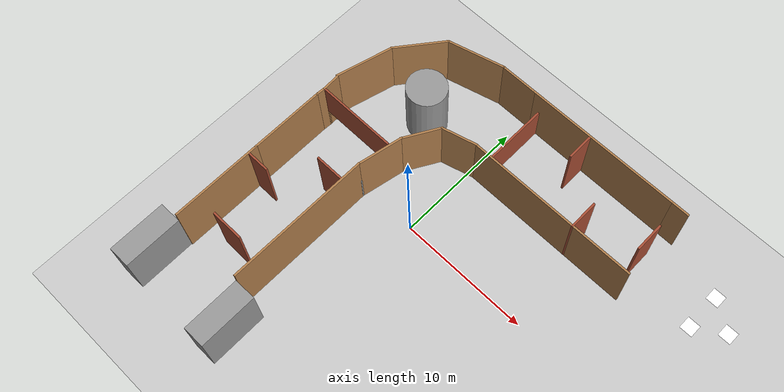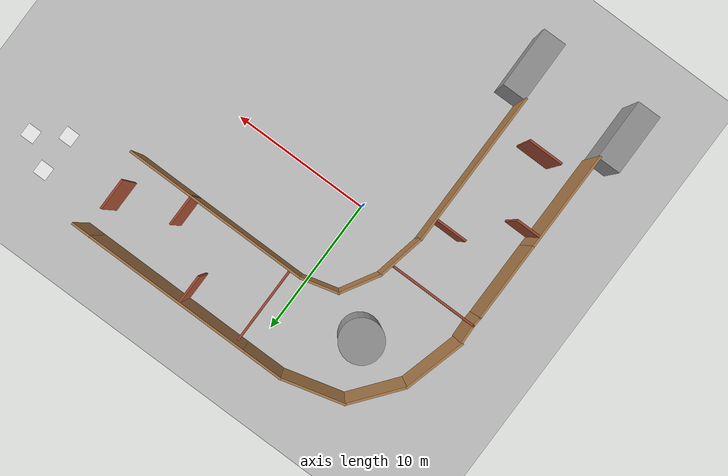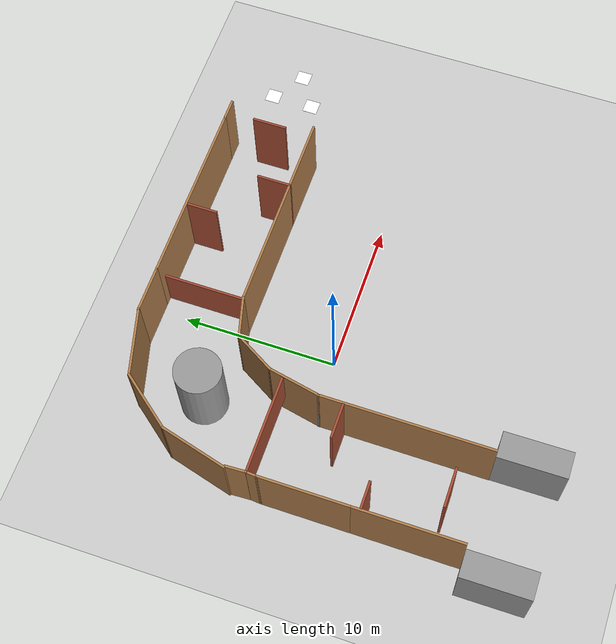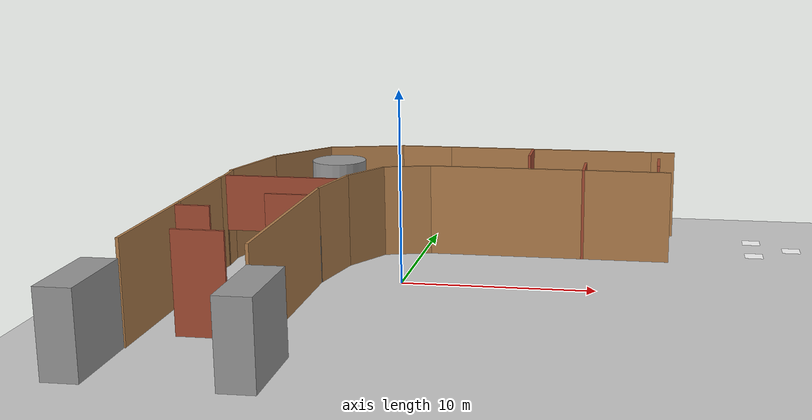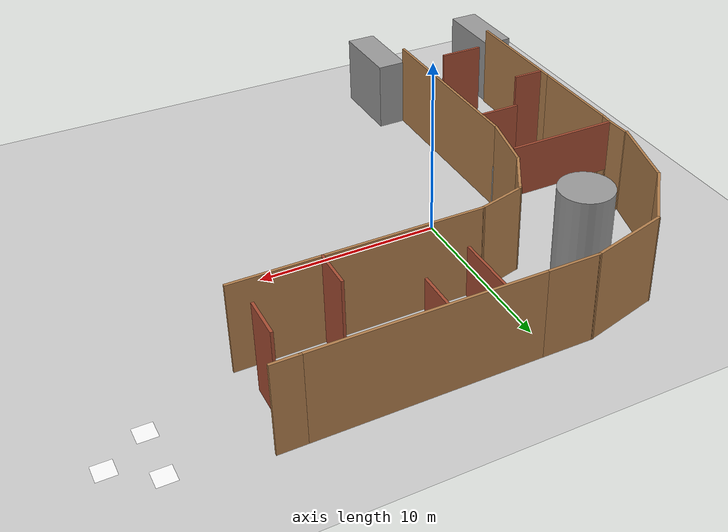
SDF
<sdf version="1.6">
 <world name="default">
  <light name="sun" type="directional">
   <pose>0 0 10 0 -0 0</pose>
   <diffuse>0.8 0.8 0.8 1</diffuse>
   <specular>0.2 0.2 0.2 1</specular>
   <attenuation>
    <range>1000</range>
    <constant>0.9</constant>
    <linear>0.01</linear>
    <quadratic>0.001</quadratic>
   </attenuation>
   <direction>-0.5 0.1 -0.9</direction>
  </light>
  <model name="ground_plane">
   <static>1</static>
   <link name="link">
    <collision name="collision">
     <geometry><plane><normal>0 0 1</normal><size>100 100</size></plane></geometry>
     <surface><friction><ode><mu>100</mu><mu2>50</mu2></ode></friction></surface>
    </collision>
    <visual name="visual">
     <cast_shadows>0</cast_shadows>
     <geometry><plane><normal>0 0 1</normal><size>100 100</size></plane></geometry>
     <material>
      <script><uri>file://media/materials/scripts/gazebo.material</uri><name>Gazebo/Grey</name></script>
     </material>
    </visual>
   </link>
  </model>
  <gravity>0 0 -9.8</gravity>
  <magnetic_field>6e-06 2.3e-05 -4.2e-05</magnetic_field>
  <atmosphere type="adiabatic"/>
  <physics name="default_physics" default="0" type="ode">
   <max_step_size>0.001</max_step_size>
   <real_time_factor>1</real_time_factor>
   <real_time_update_rate>1000</real_time_update_rate>
  </physics>
  <scene><ambient>0.4 0.4 0.4 1</ambient><background>0.7 0.7 0.7 1</background><shadows>1</shadows></scene>
  <spherical_coordinates>
   <surface_model>EARTH_WGS84</surface_model>
   <latitude_deg>0</latitude_deg>
   <longitude_deg>0</longitude_deg>
   <elevation>0</elevation>
   <heading_deg>0</heading_deg>
  </spherical_coordinates>
  <model name="interiit_world2">
   <pose>1.8047 0.18445 0 0 -0 0</pose>
   <link name="Wall_10">
    <collision name="Wall_10_Collision">
     <geometry><box><size>7 0.15 5</size></box></geometry>
     <pose>0 0 2.5 0 -0 0</pose>
    </collision>
    <visual name="Wall_10_Visual">
     <pose>0 0 2.5 0 -0 0</pose>
     <geometry><box><size>7 0.15 5</size></box></geometry>
     <material>
      <script><uri>file://media/materials/scripts/gazebo.material</uri><name>Gazebo/Wood</name></script>
      <ambient>1 1 1 1</ambient>
     </material>
     <meta><layer>0</layer></meta>
    </visual>
    <pose>-11.8375 -7.97498 0 0 -0 -1.5708</pose>
   </link>
   <link name="Wall_20">
    <collision name="Wall_20_Collision">
     <geometry><box><size>12 0.15 5</size></box></geometry>
     <pose>0 0 2.5 0 -0 0</pose>
    </collision>
    <visual name="Wall_20_Visual">
     <pose>0 0 2.5 0 -0 0</pose>
     <geometry><box><size>12 0.15 5</size></box></geometry>
     <material>
      <script><uri>file://media/materials/scripts/gazebo.material</uri><name>Gazebo/Wood</name></script>
      <ambient>1 1 1 1</ambient>
     </material>
     <meta><layer>0</layer></meta>
    </visual>
    <pose>4.65949 11.513 0 0 -0 3.14159</pose>
   </link>
   <link name="Wall_22">
    <collision name="Wall_22_Collision">
     <geometry><box><size>3 0.15 5</size></box></geometry>
     <pose>0 0 2.5 0 -0 0</pose>
    </collision>
    <visual name="Wall_22_Visual">
     <pose>0 0 2.5 0 -0 0</pose>
     <geometry><box><size>3 0.15 5</size></box></geometry>
     <material>
      <script><uri>file://media/materials/scripts/gazebo.material</uri><name>Gazebo/Wood</name></script>
      <ambient>1 1 1 1</ambient>
     </material>
     <meta><layer>0</layer></meta>
    </visual>
    <pose>-2.69051 11.513 0 0 -0 3.14159</pose>
   </link>
   <link name="Wall_24">
    <collision name="Wall_24_Collision">
     <geometry><box><size>1.39517 0.15 5</size></box></geometry>
     <pose>0 0 2.5 0 -0 0</pose>
    </collision>
    <visual name="Wall_24_Visual">
     <pose>0 0 2.5 0 -0 0</pose>
     <geometry><box><size>1.39517 0.15 5</size></box></geometry>
     <material>
      <script><uri>file://media/materials/scripts/gazebo.material</uri><name>Gazebo/Wood</name></script>
      <ambient>1 1 1 1</ambient>
     </material>
     <meta><layer>0</layer></meta>
    </visual>
    <pose>-11.8185 2.32902 0 0 -0 -1.52741</pose>
   </link>
   <link name="Wall_26">
    <collision name="Wall_26_Collision">
     <geometry><box><size>4.5 0.15 5</size></box></geometry>
     <pose>0 0 2.5 0 -0 0</pose>
    </collision>
    <visual name="Wall_26_Visual">
     <pose>0 0 2.5 0 -0 0</pose>
     <geometry><box><size>4.5 0.15 5</size></box></geometry>
     <material>
      <script><uri>file://media/materials/scripts/gazebo.material</uri><name>Gazebo/Wood</name></script>
      <ambient>1 1 1 1</ambient>
     </material>
     <meta><layer>0</layer></meta>
    </visual>
    <pose>-6.21601 10.95 0 0 -0 -2.87972</pose>
   </link>
   <link name="Wall_28">
    <collision name="Wall_28_Collision">
     <geometry><box><size>4.5 0.15 5</size></box></geometry>
     <pose>0 0 2.5 0 -0 0</pose>
    </collision>
    <visual name="Wall_28_Visual">
     <pose>0 0 2.5 0 -0 0</pose>
     <geometry><box><size>4.5 0.15 5</size></box></geometry>
     <material>
      <script><uri>file://media/materials/scripts/gazebo.material</uri><name>Gazebo/Wood</name></script>
      <ambient>1 1 1 1</ambient>
     </material>
     <meta><layer>0</layer></meta>
    </visual>
    <pose>-11.355 5.13552 0 0 -0 -1.83245</pose>
   </link>
   <link name="Wall_30">
    <collision name="Wall_30_Collision">
     <geometry><box><size>4.15659 0.15 5</size></box></geometry>
     <pose>0 0 2.5 0 -0 0</pose>
    </collision>
    <visual name="Wall_30_Visual">
     <pose>0 0 2.5 0 -0 0</pose>
     <geometry><box><size>4.15659 0.15 5</size></box></geometry>
     <material>
      <script><uri>file://media/materials/scripts/gazebo.material</uri><name>Gazebo/Wood</name></script>
      <ambient>1 1 1 1</ambient>
     </material>
     <meta><layer>0</layer></meta>
    </visual>
    <pose>-9.55451 8.81152 0 0 -0 -2.23681</pose>
   </link>
   <link name="Wall_38">
    <collision name="Wall_38_Collision">
     <geometry><box><size>11 0.15 5</size></box></geometry>
     <pose>0 0 2.5 0 -0 0</pose>
    </collision>
    <visual name="Wall_38_Visual">
     <pose>0 0 2.5 0 -0 0</pose>
     <geometry><box><size>11 0.15 5</size></box></geometry>
     <material>
      <script><uri>file://media/materials/scripts/gazebo.material</uri><name>Gazebo/Wood</name></script>
      <ambient>1 1 1 1</ambient>
     </material>
     <meta><layer>0</layer></meta>
    </visual>
    <pose>-5.99251 -6.10498 0 0 -0 1.5708</pose>
   </link>
   <link name="Wall_40">
    <collision name="Wall_40_Collision">
     <geometry><box><size>2.75 0.15 5</size></box></geometry>
     <pose>0 0 2.5 0 -0 0</pose>
    </collision>
    <visual name="Wall_40_Visual">
     <pose>0 0 2.5 0 -0 0</pose>
     <geometry><box><size>2.75 0.15 5</size></box></geometry>
     <material>
      <script><uri>file://media/materials/scripts/gazebo.material</uri><name>Gazebo/Wood</name></script>
      <ambient>1 1 1 1</ambient>
     </material>
     <meta><layer>0</layer></meta>
    </visual>
    <pose>-2.63401 5.42352 0 0 -0 -2.87973</pose>
   </link>
   <link name="Wall_41">
    <collision name="Wall_41_Collision">
     <geometry><box><size>3 0.15 5</size></box></geometry>
     <pose>0 0 2.5 0 -0 0</pose>
    </collision>
    <visual name="Wall_41_Visual">
     <pose>0 0 2.5 0 -0 0</pose>
     <geometry><box><size>3 0.15 5</size></box></geometry>
     <material>
      <script><uri>file://media/materials/scripts/gazebo.material</uri><name>Gazebo/Wood</name></script>
      <ambient>1 1 1 1</ambient>
     </material>
     <meta><layer>0</layer></meta>
    </visual>
    <pose>-4.60201 3.85302 0 0 -0 -2.09443</pose>
   </link>
   <link name="Wall_42">
    <collision name="Wall_42_Collision">
     <geometry><box><size>3.51723 0.15 5</size></box></geometry>
     <pose>0 0 2.5 0 -0 0</pose>
    </collision>
    <visual name="Wall_42_Visual">
     <pose>0 0 2.5 0 -0 0</pose>
     <geometry><box><size>3.51723 0.15 5</size></box></geometry>
     <material>
      <script><uri>file://media/materials/scripts/gazebo.material</uri><name>Gazebo/Wood</name></script>
      <ambient>1 1 1 1</ambient>
     </material>
     <meta><layer>0</layer></meta>
    </visual>
    <pose>-5.65351 0.969523 0 0 -0 -1.77349</pose>
   </link>
   <link name="Wall_43">
    <collision name="Wall_43_Collision">
     <geometry><box><size>0.16 0.15 2.5</size></box></geometry>
     <pose>0 0 1.25 0 -0 0</pose>
    </collision>
    <visual name="Wall_43_Visual">
     <pose>0 0 1.25 0 -0 0</pose>
     <geometry><box><size>0.16 0.15 2.5</size></box></geometry>
     <material>
      <script><uri>file://media/materials/scripts/gazebo.material</uri><name>Gazebo/Grey</name></script>
      <ambient>1 1 1 1</ambient>
     </material>
     <meta><layer>0</layer></meta>
    </visual>
    <pose>-5.98772 -0.679823 0 0 -0 0.032065</pose>
   </link>
   <link name="Wall_48">
    <collision name="Wall_48_Collision">
     <geometry><box><size>13.25 0.15 5</size></box></geometry>
     <pose>0 0 2.5 0 -0 0</pose>
    </collision>
    <visual name="Wall_48_Visual">
     <pose>0 0 2.5 0 -0 0</pose>
     <geometry><box><size>13.25 0.15 5</size></box></geometry>
     <material>
      <script><uri>file://media/materials/scripts/gazebo.material</uri><name>Gazebo/Wood</name></script>
      <ambient>1 1 1 1</ambient>
     </material>
     <meta><layer>0</layer></meta>
    </visual>
    <pose>5.17149 5.76002 0 0 -0 0</pose>
   </link>
   <link name="Wall_50">
    <collision name="Wall_50_Collision">
     <geometry><box><size>1.5 0.15 5</size></box></geometry>
     <pose>0 0 2.5 0 -0 0</pose>
    </collision>
    <visual name="Wall_50_Visual">
     <pose>0 0 2.5 0 -0 0</pose>
     <geometry><box><size>1.5 0.15 5</size></box></geometry>
     <material>
      <script><uri>file://media/materials/scripts/gazebo.material</uri><name>Gazebo/Wood</name></script>
      <ambient>1 1 1 1</ambient>
     </material>
     <meta><layer>0</layer></meta>
    </visual>
    <pose>11.2595 11.513 0 0 -0 0</pose>
   </link>
   <link name="Wall_52">
    <collision name="Wall_52_Collision">
     <geometry><box><size>2.5 0.15 5</size></box></geometry>
     <pose>0 0 2.5 0 -0 0</pose>
    </collision>
    <visual name="Wall_52_Visual">
     <pose>0 0 2.5 0 -0 0</pose>
     <geometry><box><size>2.5 0.15 5</size></box></geometry>
     <material>
      <script><uri>file://media/materials/scripts/gazebo.material</uri><name>Gazebo/Bricks</name></script>
      <ambient>1 1 1 1</ambient>
     </material>
     <meta><layer>0</layer></meta>
    </visual>
    <pose>-8.94051 -9.64151 0 0 -0 0</pose>
   </link>
   <link name="Wall_56">
    <collision name="Wall_56_Collision">
     <geometry><box><size>1.75 0.15 5</size></box></geometry>
     <pose>0 0 2.5 0 -0 0</pose>
    </collision>
    <visual name="Wall_56_Visual">
     <pose>0 0 2.5 0 -0 0</pose>
     <geometry><box><size>1.75 0.15 5</size></box></geometry>
     <material>
      <script><uri>file://media/materials/scripts/gazebo.material</uri><name>Gazebo/Bricks</name></script>
      <ambient>1 1 1 1</ambient>
     </material>
     <meta><layer>0</layer></meta>
    </visual>
    <pose>-10.9145 -5.19198 0 0 -0 0</pose>
   </link>
   <link name="Wall_58">
    <collision name="Wall_58_Collision">
     <geometry><box><size>2.25 0.15 5</size></box></geometry>
     <pose>0 0 2.5 0 -0 0</pose>
    </collision>
    <visual name="Wall_58_Visual">
     <pose>0 0 2.5 0 -0 0</pose>
     <geometry><box><size>2.25 0.15 5</size></box></geometry>
     <material>
      <script><uri>file://media/materials/scripts/gazebo.material</uri><name>Gazebo/Bricks</name></script>
      <ambient>1 1 1 1</ambient>
     </material>
     <meta><layer>0</layer></meta>
    </visual>
    <pose>-7.15751 -2.23898 0 0 -0 0</pose>
   </link>
   <link name="Wall_60">
    <collision name="Wall_60_Collision">
     <geometry><box><size>6.25 0.15 3</size></box></geometry>
     <pose>0 0 1.5 0 -0 0</pose>
    </collision>
    <visual name="Wall_60_Visual">
     <pose>0 0 1.5 0 -0 0</pose>
     <geometry><box><size>6.25 0.15 3</size></box></geometry>
     <material>
      <script><uri>file://media/materials/scripts/gazebo.material</uri><name>Gazebo/Bricks</name></script>
      <ambient>1 1 1 1</ambient>
     </material>
     <meta><layer>0</layer></meta>
    </visual>
    <pose>-8.74176 1.7068 2 0 -0 -7.5e-05</pose>
   </link>
   <link name="Wall_62">
    <collision name="Wall_62_Collision">
     <geometry><box><size>5.75 0.15 3</size></box></geometry>
     <pose>0 0 1.5 0 -0 0</pose>
    </collision>
    <visual name="Wall_62_Visual">
     <pose>0 0 1.5 0 -0 0</pose>
     <geometry><box><size>5.75 0.15 3</size></box></geometry>
     <material>
      <script><uri>file://media/materials/scripts/gazebo.material</uri><name>Gazebo/Bricks</name></script>
      <ambient>1 1 1 1</ambient>
     </material>
     <meta><layer>0</layer></meta>
    </visual>
    <pose>-0.578513 8.62002 0 0 -0 -1.5708</pose>
   </link>
   <link name="Wall_64">
    <collision name="Wall_64_Collision">
     <geometry><box><size>2 0.15 5</size></box></geometry>
     <pose>0 0 2.5 0 -0 0</pose>
    </collision>
    <visual name="Wall_64_Visual">
     <pose>0 0 2.5 0 -0 0</pose>
     <geometry><box><size>2 0.15 5</size></box></geometry>
     <material>
      <script><uri>file://media/materials/scripts/gazebo.material</uri><name>Gazebo/Bricks</name></script>
      <ambient>1 1 1 1</ambient>
     </material>
     <meta><layer>0</layer></meta>
    </visual>
    <pose>3.72849 10.434 0 0 -0 -1.5708</pose>
   </link>
   <link name="Wall_66">
    <collision name="Wall_66_Collision">
     <geometry><box><size>2.25 0.15 5</size></box></geometry>
     <pose>0 0 2.5 0 -0 0</pose>
    </collision>
    <visual name="Wall_66_Visual">
     <pose>0 0 2.5 0 -0 0</pose>
     <geometry><box><size>2.25 0.15 5</size></box></geometry>
     <material>
      <script><uri>file://media/materials/scripts/gazebo.material</uri><name>Gazebo/Bricks</name></script>
      <ambient>1 1 1 1</ambient>
     </material>
     <meta><layer>0</layer></meta>
    </visual>
    <pose>7.07752 6.80952 0 0 -0 -1.5708</pose>
   </link>
   <link name="Wall_68">
    <collision name="Wall_68_Collision">
     <geometry><box><size>2.25 0.15 5</size></box></geometry>
     <pose>0 0 2.5 0 -0 0</pose>
    </collision>
    <visual name="Wall_68_Visual">
     <pose>0 0 2.5 0 -0 0</pose>
     <geometry><box><size>2.25 0.15 5</size></box></geometry>
     <material>
      <script><uri>file://media/materials/scripts/gazebo.material</uri><name>Gazebo/Bricks</name></script>
      <ambient>1 1 1 1</ambient>
     </material>
     <meta><layer>0</layer></meta>
    </visual>
    <pose>11.1115 8.58602 0 0 -0 -1.5708</pose>
   </link>
   <link name="Wall_70">
    <collision name="Wall_70_Collision">
     <geometry><box><size>0.808117 0.15 5</size></box></geometry>
     <pose>0 0 2.5 0 -0 0</pose>
    </collision>
    <visual name="Wall_70_Visual">
     <pose>0 0 2.5 0 -0 0</pose>
     <geometry><box><size>0.808117 0.15 5</size></box></geometry>
     <material>
      <script><uri>file://media/materials/scripts/gazebo.material</uri><name>Gazebo/Wood</name></script>
      <ambient>1 1 1 1</ambient>
     </material>
     <meta><layer>0</layer></meta>
    </visual>
    <pose>-11.8145 1.37852 0 0 -0 1.5009</pose>
   </link>
   <link name="Wall_8">
    <collision name="Wall_8_Collision">
     <geometry><box><size>5.75 0.15 5</size></box></geometry>
     <pose>0 0 2.5 0 -0 0</pose>
    </collision>
    <visual name="Wall_8_Visual">
     <pose>0 0 2.5 0 -0 0</pose>
     <geometry><box><size>5.75 0.15 5</size></box></geometry>
     <material>
      <script><uri>file://media/materials/scripts/gazebo.material</uri><name>Gazebo/Wood</name></script>
      <ambient>1 1 1 1</ambient>
     </material>
     <meta><layer>0</layer></meta>
    </visual>
    <pose>-11.8375 -1.74998 0 0 -0 -1.5708</pose>
   </link>
   <static>1</static>
  </model>
  <model name="world2_model">
   <link name="link_3">
    <inertial>
     <mass>63.6173</mass>
     <inertia><ixx>168.321</ixx><ixy>0</ixy><ixz>0</ixz><iyy>168.321</iyy><iyz>0</iyz><izz>71.5694</izz></inertia>
    </inertial>
    <visual name="visual">
     <geometry><cylinder><radius>1.5</radius><length>5</length></cylinder></geometry>
     <material>
      <lighting>1</lighting>
      <script><uri>file://media/materials/scripts/gazebo.material</uri><name>Gazebo/Grey</name></script>
      <shader type="pixel"><normal_map>__default__</normal_map></shader>
      <ambient>0.3 0.3 0.3 1</ambient>
      <diffuse>0.7 0.7 0.7 1</diffuse>
      <specular>0.01 0.01 0.01 1</specular>
      <emissive>0 0 0 1</emissive>
     </material>
    </visual>
    <collision name="collision">
     <geometry><cylinder><radius>1.5</radius><length>5</length></cylinder></geometry>
     <surface>
      <friction>
       <ode><mu>1</mu><mu2>1</mu2><fdir1>0 0 0</fdir1><slip1>0</slip1><slip2>0</slip2></ode>
       <torsional>
        <coefficient>1</coefficient>
        <patch_radius>0</patch_radius>
        <surface_radius>0</surface_radius>
        <use_patch_radius>1</use_patch_radius>
        <ode><slip>0</slip></ode>
       </torsional>
      </friction>
      <bounce><restitution_coefficient>0</restitution_coefficient><threshold>1e+06</threshold></bounce>
      <contact>
       <collide_without_contact>0</collide_without_contact>
       <collide_without_contact_bitmask>1</collide_without_contact_bitmask>
       <collide_bitmask>1</collide_bitmask>
       <ode>
        <soft_cfm>0</soft_cfm>
        <soft_erp>0.2</soft_erp>
        <kp>1e+13</kp>
        <kd>1</kd>
        <max_vel>0.01</max_vel>
        <min_depth>0</min_depth>
       </ode>
       <bullet>
        <split_impulse>1</split_impulse>
        <split_impulse_penetration_threshold>-0.01</split_impulse_penetration_threshold>
        <soft_cfm>0</soft_cfm>
        <soft_erp>0.2</soft_erp>
        <kp>1e+13</kp>
        <kd>1</kd>
       </bullet>
      </contact>
     </surface>
    </collision>
   </link>
   <static>0</static>
   <pose>-4.99414 6.8128 2.49999 0 -0 0</pose>
  </model>
  <model name="aruco_visual_marker_0">
   <link name="marker">
    <visual name="visual">
     <geometry><box><size>1 1 1e-05</size></box></geometry>
     <material>
      <script>
       <uri>model://aruco_visual_marker_0/materials/scripts</uri>
       <uri>model://aruco_visual_marker_0/materials/textures</uri>
       <name>ArucoVisualMarker0/Marker</name>
      </script>
      <ambient>1 1 1 1</ambient>
      <diffuse>1 1 1 1</diffuse>
      <specular>0 0 0 1</specular>
      <emissive>1 1 1 0</emissive>
      <shader type="vertex"><normal_map>__default__</normal_map></shader>
     </material>
    </visual>
    <collision name="collision"><geometry><box><size>0.1778 0.1778 1e-05</size></box></geometry></collision>
   </link>
   <link name="marker_pad">
    <pose frame="marker">0 0 -1e-05 0 -0 0</pose>
    <visual name="visual">
     <geometry><box><size>0.1778 0.1778 1e-05</size></box></geometry>
     <material>
      <lighting>1</lighting>
      <script><uri>file://media/materials/scripts/gazebo.material</uri><name>Gazebo/White</name></script>
      <ambient>0.3 0.3 0.3 1</ambient>
      <diffuse>0.7 0.7 0.7 1</diffuse>
      <specular>0.01 0.01 0.01 1</specular>
      <emissive>1 1 1 0</emissive>
      <shader type="vertex"><normal_map>__default__</normal_map></shader>
     </material>
    </visual>
    <collision name="collision"><geometry><box><size>0.1778 0.1778 1e-05</size></box></geometry></collision>
   </link>
   <joint name="marker_JOINT_marker_pad" type="revolute">
    <parent>marker</parent>
    <child>marker_pad</child>
    <axis>
     <xyz>0 0 1</xyz>
     <limit><upper>0</upper><lower>0</lower></limit>
     <use_parent_model_frame>0</use_parent_model_frame>
     <dynamics><spring_reference>0</spring_reference><spring_stiffness>0</spring_stiffness></dynamics>
    </axis>
   </joint>
   <static>1</static>
   <pose>18.3512 10.6743 0 0 -0 0</pose>
  </model>
  <model name="aruco_visual_marker_5">
   <link name="marker">
    <visual name="visual">
     <geometry><box><size>1 1 1e-05</size></box></geometry>
     <material>
      <script>
       <uri>model://aruco_visual_marker_5/materials/scripts</uri>
       <uri>model://aruco_visual_marker_5/materials/textures</uri>
       <name>ArucoVisualMarker5/Marker</name>
      </script>
      <ambient>1 1 1 1</ambient>
      <diffuse>1 1 1 1</diffuse>
      <specular>0 0 0 1</specular>
      <emissive>1 1 1 0</emissive>
      <shader type="vertex"><normal_map>__default__</normal_map></shader>
     </material>
    </visual>
    <collision name="collision"><geometry><box><size>0.1778 0.1778 1e-05</size></box></geometry></collision>
   </link>
   <link name="marker_pad">
    <pose frame="marker">0 0 -1e-05 0 -0 0</pose>
    <visual name="visual">
     <geometry><box><size>0.1778 0.1778 1e-05</size></box></geometry>
     <material>
      <lighting>1</lighting>
      <script><uri>file://media/materials/scripts/gazebo.material</uri><name>Gazebo/White</name></script>
      <ambient>0.3 0.3 0.3 1</ambient>
      <diffuse>0.7 0.7 0.7 1</diffuse>
      <specular>0.01 0.01 0.01 1</specular>
      <emissive>1 1 1 0</emissive>
      <shader type="vertex"><normal_map>__default__</normal_map></shader>
     </material>
    </visual>
    <collision name="collision"><geometry><box><size>0.1778 0.1778 1e-05</size></box></geometry></collision>
   </link>
   <joint name="marker_JOINT_marker_pad" type="revolute">
    <parent>marker</parent>
    <child>marker_pad</child>
    <axis>
     <xyz>0 0 1</xyz>
     <limit><upper>0</upper><lower>0</lower></limit>
     <use_parent_model_frame>0</use_parent_model_frame>
     <dynamics><spring_reference>0</spring_reference><spring_stiffness>0</spring_stiffness></dynamics>
    </axis>
   </joint>
   <static>1</static>
   <pose>20.482 9.209 0 0 -0 0</pose>
  </model>
  <model name="aruco_visual_marker_6">
   <link name="marker">
    <visual name="visual">
     <geometry><box><size>1 1 1e-05</size></box></geometry>
     <material>
      <script>
       <uri>model://aruco_visual_marker_6/materials/scripts</uri>
       <uri>model://aruco_visual_marker_6/materials/textures</uri>
       <name>ArucoVisualMarker6/Marker</name>
      </script>
      <ambient>1 1 1 1</ambient>
      <diffuse>1 1 1 1</diffuse>
      <specular>0 0 0 1</specular>
      <emissive>1 1 1 0</emissive>
      <shader type="vertex"><normal_map>__default__</normal_map></shader>
     </material>
    </visual>
    <collision name="collision"><geometry><box><size>0.1778 0.1778 1e-05</size></box></geometry></collision>
   </link>
   <link name="marker_pad">
    <pose frame="marker">0 0 -1e-05 0 -0 0</pose>
    <visual name="visual">
     <geometry><box><size>0.1778 0.1778 1e-05</size></box></geometry>
     <material>
      <lighting>1</lighting>
      <script><uri>file://media/materials/scripts/gazebo.material</uri><name>Gazebo/White</name></script>
      <ambient>0.3 0.3 0.3 1</ambient>
      <diffuse>0.7 0.7 0.7 1</diffuse>
      <specular>0.01 0.01 0.01 1</specular>
      <emissive>1 1 1 0</emissive>
      <shader type="vertex"><normal_map>__default__</normal_map></shader>
     </material>
    </visual>
    <collision name="collision"><geometry><box><size>0.1778 0.1778 1e-05</size></box></geometry></collision>
   </link>
   <joint name="marker_JOINT_marker_pad" type="revolute">
    <parent>marker</parent>
    <child>marker_pad</child>
    <axis>
     <xyz>0 0 1</xyz>
     <limit><upper>0</upper><lower>0</lower></limit>
     <use_parent_model_frame>0</use_parent_model_frame>
     <dynamics><spring_reference>0</spring_reference><spring_stiffness>0</spring_stiffness></dynamics>
    </axis>
   </joint>
   <static>1</static>
   <pose>18.3317 7.85826 0 0 -0 0</pose>
  </model>
  <audio><device>default</device></audio>
  <model name="unit_box">
   <pose>-3.3672 -13.5862 2.03874 1e-06 -0 0.009514</pose>
   <link name="link">
    <inertial>
     <mass>1</mass>
     <inertia>
      <ixx>0.166667</ixx>
      <ixy>0</ixy>
      <ixz>0</ixz>
      <iyy>0.166667</iyy>
      <iyz>0</iyz>
      <izz>0.166667</izz>
     </inertia>
    </inertial>
    <collision name="collision"><geometry><box><size>1.699 4.34471 4.07747</size></box></geometry></collision>
    <visual name="visual">
     <geometry><box><size>1.699 4.34471 4.07747</size></box></geometry>
     <material>
      <script><name>Gazebo/Grey</name><uri>file://media/materials/scripts/gazebo.material</uri></script>
     </material>
    </visual>
   </link>
  </model>
  <model name="unit_box_clone">
   <pose>-10.8657 -13.4692 2.03874 1e-06 -0 0.006758</pose>
   <link name="link">
    <inertial>
     <mass>1</mass>
     <inertia>
      <ixx>0.166667</ixx>
      <ixy>0</ixy>
      <ixz>0</ixz>
      <iyy>0.166667</iyy>
      <iyz>0</iyz>
      <izz>0.166667</izz>
     </inertia>
    </inertial>
    <collision name="collision"><geometry><box><size>1.699 4.34471 4.07748</size></box></geometry></collision>
    <visual name="visual">
     <geometry><box><size>1.699 4.34471 4.07748</size></box></geometry>
     <material>
      <script><name>Gazebo/Grey</name><uri>file://media/materials/scripts/gazebo.material</uri></script>
     </material>
    </visual>
   </link>
  </model>
 </world>
</sdf>
